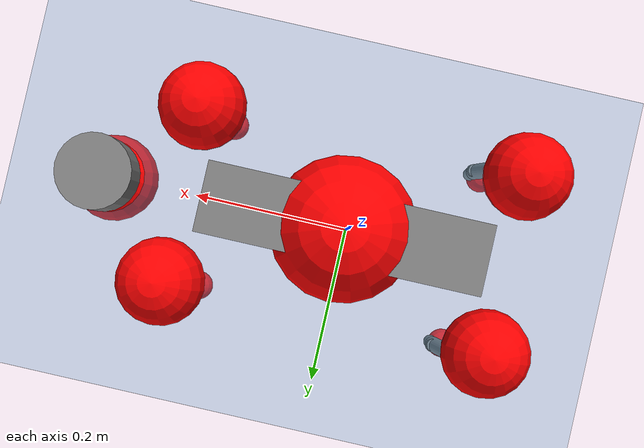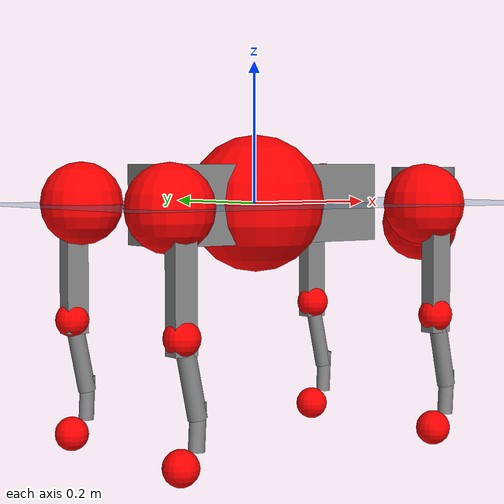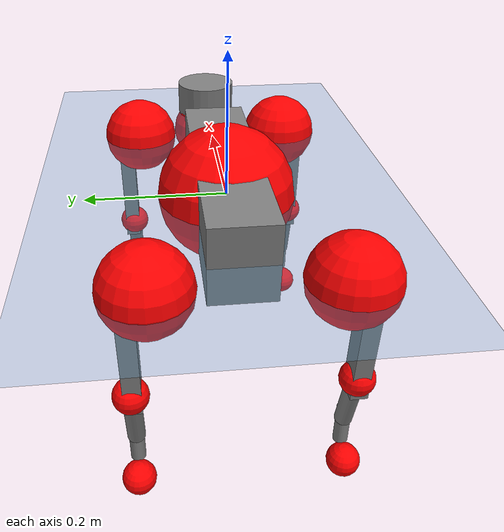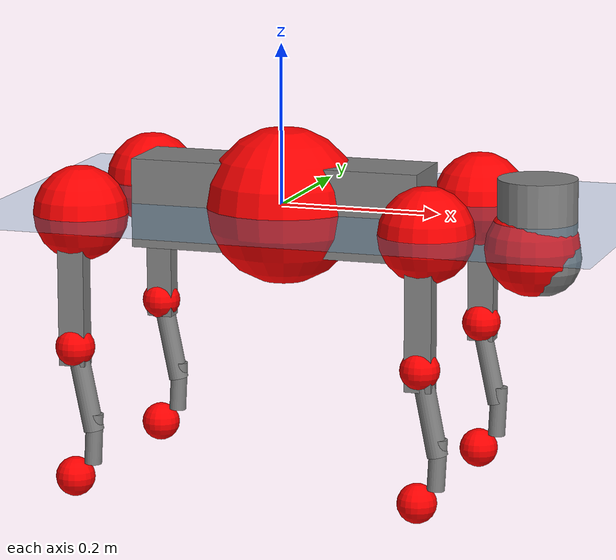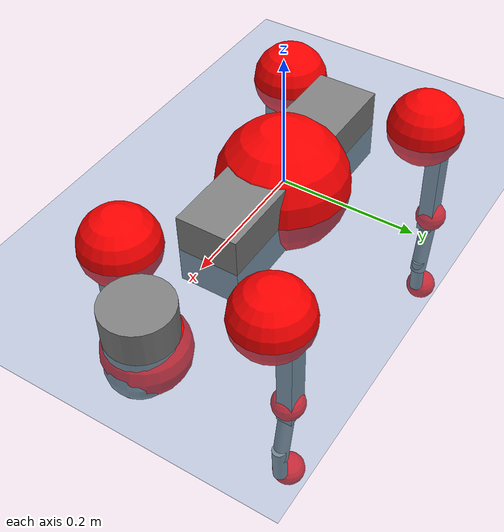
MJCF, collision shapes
<mujoco model="go2">
  <compiler angle="radian" assetdir="assets" balanceinertia="true" inertiafromgeom="false"/>

  <option timestep="0.005" density="1.2" viscosity="2e-05"/>

  <size nkey="1"/>

  <visual>
    <quality shadowsize="8192"/>
    <map shadowclip="0.5"/>
  </visual>

  <default>
    <default class="/">
      <geom contype="0" conaffinity="0" group="1" solref="-1000 -80"/>
      <site size="0.01 0.005 0.005" group="5"/>
      <general forcelimited="true" biastype="affine" gainprm="20" biasprm="0 -20 -0.5"/>
      <default class="go2">
        <joint armature="0.01" damping="0.01" frictionloss="0.2"/>
        <geom condim="1" margin="0.001"/>
        <default class="visual">
          <geom type="mesh" group="2"/>
        </default>
        <default class="collision">
          <geom group="3"/>
          <default class="foot">
            <geom size="0.022 0 0" condim="6" priority="1" friction="0.8 0.02 0.01" solimp="0.015 1 0.022"/>
          </default>
        </default>
        <default class="reward_collision_sphere">
          <geom group="5" rgba="1 0 0 1"/>
        </default>
      </default>
    </default>
  </default>

  <asset>
    <texture type="skybox" colorspace="auto" name="//unnamed_texture_0" builtin="gradient" rgb1="0.95 0.95 0.95" rgb2="0.95 0.95 0.95" width="100" height="600"/>
    <texture type="2d" colorspace="auto" name="texplane" builtin="checker" rgb1="0.345 0.575 0.748" rgb2="0.345 0.575 0.748" markrgb="1 1 1" width="512" height="512"/>
    <material name="MatPlane" class="/" texture="texplane" texuniform="true" texrepeat="2 2" specular="0.9"/>
    <material name="metal" class="/" rgba="0.9 0.95 0.95 1"/>
    <material name="black" class="/" rgba="0 0 0 1"/>
    <material name="white" class="/"/>
    <material name="gray" class="/" rgba="0.671705 0.692426 0.77427 1"/>
    <mesh name="base_0" class="/" file="base_0.obj"/>
    <mesh name="base_1" class="/" file="base_1.obj"/>
    <mesh name="base_2" class="/" file="base_2.obj"/>
    <mesh name="base_3" class="/" file="base_3.obj"/>
    <mesh name="base_4" class="/" file="base_4.obj"/>
    <mesh name="hip_0" class="/" file="hip_0.obj"/>
    <mesh name="hip_1" class="/" file="hip_1.obj"/>
    <mesh name="thigh_0" class="/" file="thigh_0.obj"/>
    <mesh name="thigh_1" class="/" file="thigh_1.obj"/>
    <mesh name="thigh_mirror_0" class="/" file="thigh_mirror_0.obj"/>
    <mesh name="thigh_mirror_1" class="/" file="thigh_mirror_1.obj"/>
    <mesh name="calf_0" class="/" file="calf_0.obj"/>
    <mesh name="calf_1" class="/" file="calf_1.obj"/>
    <mesh name="calf_mirror_0" class="/" file="calf_mirror_0.obj"/>
    <mesh name="calf_mirror_1" class="/" file="calf_mirror_1.obj"/>
    <mesh name="foot" class="/" file="foot.obj"/>
  </asset>

  <worldbody>
    <geom name="floor" class="/" size="100 100 0.125" type="plane" group="0" material="MatPlane"/>
    <light name="toplight_shadow" class="/" pos="0 0 5" dir="0.0990148 0.0990148 -0.990148" type="directional" ambient="0.04 0.04 0.04" diffuse="0.55 0.55 0.55" specular="0.12 0.12 0.12"/>
    <light name="toplight_fill" class="/" pos="0 0 5" dir="0.0990148 0.0990148 -0.990148" type="directional" castshadow="false" ambient="0.04 0.04 0.04" diffuse="0.3 0.3 0.3" specular="0.08 0.08 0.08"/>
    <body name="trunk" childclass="go2" pos="0.0027573 -5.7391e-05 -0.000113016" quat="1 0.000414504 -0.000304484 1.22341e-05">
      <inertial pos="0.0238353 -0.000147343 -0.00426211" quat="-0.00519715 0.715198 -0.00346004 0.698894" mass="6.37953" diaginertia="0.208072 0.116453 0.00649487"/>
      <joint name="//unnamed_joint_0" type="free" armature="0" damping="0" frictionloss="0"/>
      <geom name="//unnamed_geom_1" class="visual" material="black" mesh="base_0"/>
      <geom name="//unnamed_geom_2" class="visual" material="black" mesh="base_1"/>
      <geom name="//unnamed_geom_3" class="visual" material="black" mesh="base_2"/>
      <geom name="//unnamed_geom_4" class="visual" material="white" mesh="base_3"/>
      <geom name="//unnamed_geom_5" class="visual" material="gray" mesh="base_4"/>
      <geom name="trunk_1" class="collision" size="0.183019 0.0454872 0.0554604" type="box"/>
      <geom name="trunk_2" class="collision" size="0.0486494 0.0437845" pos="0.321218 0 0.00767096" type="cylinder"/>
      <geom name="trunk_3" class="collision" size="0.0457305" pos="0.330235 0 -0.0460257"/>
      <geom name="//unnamed_geom_9" class="reward_collision_sphere" size="0.0972989"/>
      <geom name="//unnamed_geom_10" class="reward_collision_sphere" size="0.0583793" pos="0.315582 0 -0.0345193"/>
      <site name="imu" pos="-0.03332 0.00375135 0.0190726" size="0.00972989"/>
      <camera name="track" pos="0 -2.04958 0" quat="0.707107 0.707107 0 0" mode="trackcom"/>
      <camera name="ego_camera" pos="0.351649 0 0.0345193" quat="-0.5 -0.5 0.5 0.5"/>
      <body name="FL_hip" pos="0.217806 0.0478116 -0.000923704" quat="0.999999 -0.00106762 -0.000334581 0.000404397">
        <inertial pos="-0.00879782 0.00214366 -0.000644599" quat="0.496238 0.498624 0.505984 0.499102" mass="0.628607" diaginertia="0.00161837 0.00065017 0.000127553"/>
        <joint name="FL_hip_joint" pos="0 0 0" axis="0.999933 0.00245788 0.0112951" range="-1.0516 1.04917" armature="0.00843041" damping="0.0071268" frictionloss="0.20219"/>
        <geom name="//unnamed_geom_11" class="visual" material="metal" mesh="hip_0"/>
        <geom name="//unnamed_geom_12" class="visual" material="gray" mesh="hip_1"/>
        <geom name="//unnamed_geom_13" class="collision" size="0.0447575 0.0194598" pos="0 0.0819832 0" quat="0.707107 0.707107 0 0" type="cylinder"/>
        <geom name="//unnamed_geom_14" class="reward_collision_sphere" size="0.0583793" pos="0 0.0717353 0"/>
        <body name="FL_thigh" pos="-0.00248687 0.0973732 -0.00048552" quat="1 6.59814e-05 -3.04017e-05 -0.000402535">
          <inertial pos="-0.00434654 -0.0228019 -0.0275679" quat="0.831213 0.0844643 -0.0198625 0.549141" mass="1.07289" diaginertia="0.0109563 0.00663096 0.000233126"/>
          <joint name="FL_thigh_joint" pos="0 0 0" axis="0.0155 0.99988 -3.62906e-05" range="-1.56702 3.49421" armature="0.0111294" damping="0" frictionloss="0.180964"/>
          <geom name="//unnamed_geom_15" class="visual" material="metal" mesh="thigh_0"/>
          <geom name="//unnamed_geom_16" class="visual" material="gray" mesh="thigh_1"/>
          <geom name="//unnamed_geom_17" class="collision" size="0.103623 0.0119191 0.0165408" pos="0 0 -0.0816957" quat="0.707107 0 0.707107 0" type="box"/>
          <body name="FL_calf" pos="-0.000532292 -0.00290219 -0.162846" quat="0.999999 0.00044324 -0.000988992 -0.000203864">
            <inertial pos="0.00803304 0.000465947 -0.108435" quat="0.712987 0.0128863 0.00241533 0.701054" mass="0.231311" diaginertia="0.00268039 0.00168073 1.39131e-05"/>
            <joint name="FL_calf_joint" pos="0 0 0" axis="-0.0049693 0.999974 -0.00516764" stiffness="0.00161771" range="-2.73148 -0.821463" armature="0.00980383" damping="0" frictionloss="0.19226"/>
            <geom name="//unnamed_geom_18" class="visual" material="gray" mesh="calf_0"/>
            <geom name="//unnamed_geom_19" class="visual" material="black" mesh="calf_1"/>
            <geom name="FL_calf0" class="collision" size="0.0116759 0.0583793" pos="0.00901664 0 -0.0460257" quat="0.994493 0 -0.104807 0" type="cylinder"/>
            <geom name="//unnamed_geom_21" class="collision" size="0.0107029 0.0316221" pos="0.0225416 0 -0.11353" quat="0.999688 0 0.0249974 0" type="cylinder"/>
            <geom name="//unnamed_geom_22" class="visual" pos="0 0 -0.163391" quat="1 0 0 0" material="black" mesh="foot"/>
            <geom name="FL_foot" class="foot" size="0.0202697" pos="-0.00225416 0 -0.163391"/>
            <geom name="//unnamed_geom_24" class="reward_collision_sphere" size="0.0243247"/>
            <geom name="//unnamed_geom_25" class="reward_collision_sphere" size="0.0243247" pos="-0.00225416 0 -0.163391"/>
            <site name="FL_foot" class="foot" pos="-0.00225416 0 -0.163391" size="0.00972989"/>
          </body>
        </body>
      </body>
      <body name="FR_hip" pos="0.215801 -0.0449117 -0.00202896" quat="1 7.94352e-05 1.81907e-05 0.00021266">
        <inertial pos="-0.00338059 -0.0026938 -0.00254024" quat="0.502347 0.499984 0.496698 0.500954" mass="0.63914" diaginertia="0.00165591 0.000679612 0.00013206"/>
        <joint name="FR_hip_joint" pos="0 0 0" axis="0.999921 0.0103639 -0.00716459" range="-1.10465 1.04176" armature="0.00948426" damping="0.0189772" frictionloss="0.168657"/>
        <geom name="//unnamed_geom_26" class="visual" pos="0 2.24493e-09 9.62895e-08" quat="4.63268e-05 1 0 0" material="metal" mesh="hip_0"/>
        <geom name="//unnamed_geom_27" class="visual" pos="0 3.63929e-09 -2.38161e-07" quat="4.63268e-05 1 0 0" material="gray" mesh="hip_1"/>
        <geom name="//unnamed_geom_28" class="collision" size="0.0447575 0.0194598" pos="0 -0.0819832 0" quat="0.707107 0.707107 0 0" type="cylinder"/>
        <geom name="//unnamed_geom_29" class="reward_collision_sphere" size="0.0583793" pos="0 -0.0717353 0"/>
        <body name="FR_thigh" pos="0.000632148 -0.0968109 0.00214858" quat="1 -5.01108e-07 -6.11146e-07 1.31236e-06">
          <inertial pos="-0.00467265 0.025366 -0.0257891" quat="0.551471 -0.0197155 0.0844916 0.82967" mass="1.05542" diaginertia="0.0108882 0.00648243 0.000232188"/>
          <joint name="FR_thigh_joint" pos="0 0 0" axis="-0.00904163 -0.999958 -0.00164927" range="-3.47975 1.58537" armature="0.0101923" damping="0.0060814" frictionloss="0.184425"/>
          <geom name="//unnamed_geom_30" class="visual" material="metal" mesh="thigh_mirror_0"/>
          <geom name="//unnamed_geom_31" class="visual" material="gray" mesh="thigh_mirror_1"/>
          <geom name="//unnamed_geom_32" class="collision" size="0.103623 0.0119191 0.0165408" pos="0 0 -0.0816957" quat="0.707107 0 0.707107 0" type="box"/>
          <body name="FR_calf" pos="-0.000368948 0.000242312 -0.16042" quat="0.999999 0.00034213 0.00120264 0.000301231">
            <inertial pos="0.00941169 -0.0010588 -0.106072" quat="0.701744 -0.00437743 0.00601739 0.712391" mass="0.217231" diaginertia="0.0027719 0.0017291 1.47361e-05"/>
            <joint name="FR_calf_joint" pos="0 0 0" axis="0.00979438 -0.999949 0.00236835" stiffness="0.00974047" range="0.781857 2.71677" armature="0.00935653" damping="0.0222573" frictionloss="0.221463"/>
            <geom name="//unnamed_geom_33" class="visual" material="gray" mesh="calf_mirror_0"/>
            <geom name="//unnamed_geom_34" class="visual" material="black" mesh="calf_mirror_1"/>
            <geom name="FR_calf0" class="collision" size="0.0126489 0.0583793" pos="0.0112708 0 -0.0460257" quat="0.995004 0 -0.0998334 0" type="cylinder"/>
            <geom name="//unnamed_geom_36" class="collision" size="0.0107029 0.0316221" pos="0.0225416 0 -0.11353" quat="0.999688 0 0.0249974 0" type="cylinder"/>
            <geom name="//unnamed_geom_37" class="visual" pos="0 0 -0.163391" quat="1 0 0 0" material="black" mesh="foot"/>
            <geom name="FR_foot" class="foot" size="0.021648" pos="-0.00225416 0 -0.163391"/>
            <geom name="//unnamed_geom_39" class="reward_collision_sphere" size="0.0243247"/>
            <geom name="//unnamed_geom_40" class="reward_collision_sphere" size="0.0243247" pos="-0.00225416 0 -0.163391"/>
            <site name="FR_foot" class="foot" pos="-0.00225416 0 -0.163391" size="0.00972989"/>
          </body>
        </body>
      </body>
      <body name="RL_hip" pos="-0.216001 0.0451678 0.000924312" quat="1 0.000231654 0.000154112 0.000136159">
        <inertial pos="0.00880469 -0.000331742 -0.000107668" quat="0.504329 0.509119 0.489078 0.497246" mass="0.621102" diaginertia="0.00163262 0.000676835 0.000123619"/>
        <joint name="RL_hip_joint" pos="0 0 0" axis="-0.999996 0.00210805 0.00179879" range="-1.00585 1.0398" armature="0.00975906" damping="0.0141614" frictionloss="0.198776"/>
        <geom name="//unnamed_geom_41" class="visual" pos="-3.13604e-09 0 -6.14736e-07" quat="4.63268e-05 0 1 0" material="metal" mesh="hip_0"/>
        <geom name="//unnamed_geom_42" class="visual" pos="-5.08389e-09 0 -5.45183e-07" quat="4.63268e-05 0 1 0" material="gray" mesh="hip_1"/>
        <geom name="//unnamed_geom_43" class="collision" size="0.0447575 0.0194598" pos="0 0.0819832 0" quat="0.707107 0.707107 0 0" type="cylinder"/>
        <geom name="//unnamed_geom_44" class="reward_collision_sphere" size="0.0583793" pos="0 0.0717353 0"/>
        <body name="RL_thigh" pos="0.00152113 0.0981604 -0.000301426" quat="1 -8.63294e-06 -4.35886e-05 3.38967e-05">
          <inertial pos="-0.00515211 -0.0200796 -0.0246813" quat="0.822789 0.0876619 -0.0174879 0.561273" mass="1.07651" diaginertia="0.010844 0.00681287 0.000232459"/>
          <joint name="RL_thigh_joint" pos="0 0 0" axis="0.00741528 0.999948 -0.00706197" range="-0.482331 4.56999" armature="0.0110934" damping="0.00209739" frictionloss="0.220774"/>
          <geom name="//unnamed_geom_45" class="visual" material="metal" mesh="thigh_0"/>
          <geom name="//unnamed_geom_46" class="visual" material="gray" mesh="thigh_1"/>
          <geom name="//unnamed_geom_47" class="collision" size="0.103623 0.0119191 0.0165408" pos="0 0 -0.0816957" quat="0.707107 0 0.707107 0" type="box"/>
          <body name="RL_calf" pos="-0.00210282 0.00237636 -0.166168" quat="0.999999 -0.000269128 -0.000606959 0.000990513">
            <inertial pos="0.00699055 -0.000644263 -0.106125" quat="0.707195 0.00437462 -0.00290031 0.706999" mass="0.214177" diaginertia="0.0026861 0.00164068 1.41792e-05"/>
            <joint name="RL_calf_joint" pos="0 0 0" axis="0.00439541 0.999916 -0.0122171" range="-2.74329 -0.873749" armature="0.00919035" damping="0.00965581" frictionloss="0.17029"/>
            <geom name="//unnamed_geom_48" class="visual" material="gray" mesh="calf_0"/>
            <geom name="//unnamed_geom_49" class="visual" material="black" mesh="calf_1"/>
            <geom name="RL_calf0" class="collision" size="0.0126489 0.0583793" pos="0.0112708 0 -0.0460257" quat="0.995004 0 -0.0998334 0" type="cylinder"/>
            <geom name="//unnamed_geom_51" class="collision" size="0.0107029 0.0316221" pos="0.0225416 0 -0.11353" quat="0.999688 0 0.0249974 0" type="cylinder"/>
            <geom name="//unnamed_geom_52" class="visual" pos="0 0 -0.163391" quat="1 0 0 0" material="black" mesh="foot"/>
            <geom name="RL_foot" class="foot" size="0.0170228" pos="-0.00225416 0 -0.163391"/>
            <geom name="//unnamed_geom_54" class="reward_collision_sphere" size="0.0243247"/>
            <geom name="//unnamed_geom_55" class="reward_collision_sphere" size="0.0243247" pos="-0.00225416 0 -0.163391"/>
            <site name="RL_foot" class="foot" pos="-0.00225416 0 -0.163391" size="0.00972989"/>
          </body>
        </body>
      </body>
      <body name="RR_hip" pos="-0.220202 -0.0492489 -0.000331519" quat="1 -8.4781e-05 -0.000136687 3.51947e-05">
        <inertial pos="0.00822315 -0.000939862 0.000278859" quat="0.506266 0.489161 0.504547 0.499848" mass="0.632061" diaginertia="0.0016573 0.000698618 0.000131921"/>
        <joint name="RR_hip_joint" pos="0 0 0" axis="-0.999911 -0.0129841 0.00311557" range="-1.04441 1.0344" armature="0.00984729" damping="0.00766166" frictionloss="0.198526"/>
        <geom name="//unnamed_geom_56" class="visual" pos="3.1325e-09 2.24493e-09 -7.11025e-07" quat="2.14617e-09 4.63268e-05 4.63268e-05 -1" material="metal" mesh="hip_0"/>
        <geom name="//unnamed_geom_57" class="visual" pos="5.09265e-09 3.63929e-09 -3.07022e-07" quat="2.14617e-09 4.63268e-05 4.63268e-05 -1" material="gray" mesh="hip_1"/>
        <geom name="//unnamed_geom_58" class="collision" size="0.0447575 0.0194598" pos="0 -0.0819832 0" quat="0.707107 0.707107 0 0" type="cylinder"/>
        <geom name="//unnamed_geom_59" class="reward_collision_sphere" size="0.0583793" pos="0 -0.0717353 0"/>
        <body name="RR_thigh" pos="9.54178e-05 -0.0977486 0.00139" quat="1 -6.46509e-05 -0.000134963 -0.000143309">
          <inertial pos="-0.00511241 0.0228151 -0.0258542" quat="0.558066 -0.0134683 0.077093 0.826098" mass="1.07718" diaginertia="0.0107776 0.00683718 0.000241159"/>
          <joint name="RR_thigh_joint" pos="0 0 0" axis="0.00556043 -0.999976 -0.00409583" range="-4.54303 0.518037" armature="0.0109012" damping="0.00277623" frictionloss="0.186291"/>
          <geom name="//unnamed_geom_60" class="visual" material="metal" mesh="thigh_mirror_0"/>
          <geom name="//unnamed_geom_61" class="visual" material="gray" mesh="thigh_mirror_1"/>
          <geom name="//unnamed_geom_62" class="collision" size="0.103623 0.0119191 0.0165408" pos="0 0 -0.0816957" quat="0.707107 0 0.707107 0" type="box"/>
          <body name="RR_calf" pos="0.000522857 -9.81472e-05 -0.163328" quat="1 3.86184e-05 -0.000342782 0.000246923">
            <inertial pos="0.00422845 -0.00193411 -0.105935" quat="0.703449 -0.00332325 0.000738599 0.710738" mass="0.230563" diaginertia="0.00265133 0.00171629 1.41342e-05"/>
            <joint name="RR_calf_joint" pos="0 0 0" axis="-0.000529254 -0.999993 0.0035805" stiffness="0.00221474" range="0.84412 2.77931" armature="0.00984526" damping="0.00927598" frictionloss="0.220896"/>
            <geom name="//unnamed_geom_63" class="visual" material="gray" mesh="calf_mirror_0"/>
            <geom name="//unnamed_geom_64" class="visual" material="black" mesh="calf_mirror_1"/>
            <geom name="RR_calf0" class="collision" size="0.0126489 0.0583793" pos="0.0112708 0 -0.0460257" quat="0.995004 0 -0.0998334 0" type="cylinder"/>
            <geom name="//unnamed_geom_66" class="collision" size="0.0107029 0.0316221" pos="0.0225416 0 -0.11353" quat="0.999688 0 0.0249974 0" type="cylinder"/>
            <geom name="//unnamed_geom_67" class="visual" pos="0 0 -0.163391" quat="1 0 0 0" material="black" mesh="foot"/>
            <geom name="RR_foot" class="foot" size="0.0231476" pos="-0.00225416 0 -0.163391"/>
            <geom name="//unnamed_geom_69" class="reward_collision_sphere" size="0.0243247"/>
            <geom name="//unnamed_geom_70" class="reward_collision_sphere" size="0.0243247" pos="-0.00225416 0 -0.163391"/>
            <site name="RR_foot" class="foot" pos="-0.00225416 0 -0.163391" size="0.00972989"/>
          </body>
        </body>
      </body>
    </body>
  </worldbody>

  <contact>
    <pair class="/" geom1="floor" geom2="FL_foot" name="//unnamed_contact_0"/>
    <pair class="/" geom1="floor" geom2="FR_foot" name="//unnamed_contact_1"/>
    <pair class="/" geom1="floor" geom2="RL_foot" name="//unnamed_contact_2"/>
    <pair class="/" geom1="floor" geom2="RR_foot" name="//unnamed_contact_3"/>
  </contact>

  <actuator>
    <general name="FL_hip" class="/" joint="FL_hip_joint" forcerange="-23.082 23.082" gainprm="19.4292" biasprm="0 -19.4292 -0.476532"/>
    <general name="FL_thigh" class="/" joint="FL_thigh_joint" forcerange="-20.7767 20.7767" gainprm="19.4292" biasprm="0 -19.4292 -0.476532"/>
    <general name="FL_calf" class="/" joint="FL_calf_joint" forcerange="-45.3938 45.3938" gainprm="19.4292" biasprm="0 -19.4292 -0.476532"/>
    <general name="FR_hip" class="/" joint="FR_hip_joint" forcerange="-22.9744 22.9744" gainprm="19.4292" biasprm="0 -19.4292 -0.476532"/>
    <general name="FR_thigh" class="/" joint="FR_thigh_joint" forcerange="-22.6469 22.6469" gainprm="19.4292" biasprm="0 -19.4292 -0.476532"/>
    <general name="FR_calf" class="/" joint="FR_calf_joint" forcerange="-47.1948 47.1948" gainprm="19.4292" biasprm="0 -19.4292 -0.476532"/>
    <general name="RL_hip" class="/" joint="RL_hip_joint" forcerange="-22.8879 22.8879" gainprm="19.4292" biasprm="0 -19.4292 -0.476532"/>
    <general name="RL_thigh" class="/" joint="RL_thigh_joint" forcerange="-24.6673 24.6673" gainprm="19.4292" biasprm="0 -19.4292 -0.476532"/>
    <general name="RL_calf" class="/" joint="RL_calf_joint" forcerange="-42.8134 42.8134" gainprm="19.4292" biasprm="0 -19.4292 -0.476532"/>
    <general name="RR_hip" class="/" joint="RR_hip_joint" forcerange="-22.7934 22.7934" gainprm="19.4292" biasprm="0 -19.4292 -0.476532"/>
    <general name="RR_thigh" class="/" joint="RR_thigh_joint" forcerange="-22.3803 22.3803" gainprm="19.4292" biasprm="0 -19.4292 -0.476532"/>
    <general name="RR_calf" class="/" joint="RR_calf_joint" forcerange="-40.2047 40.2047" gainprm="19.4292" biasprm="0 -19.4292 -0.476532"/>
  </actuator>

  <sensor>
    <gyro site="imu" name="imu_angular_velocity"/>
    <velocimeter site="imu" name="imu_linear_velocity"/>
    <framelinvel objtype="site" objname="FL_foot" name="FL_foot_global_linear_velocity"/>
    <framelinvel objtype="site" objname="FR_foot" name="FR_foot_global_linear_velocity"/>
    <framelinvel objtype="site" objname="RL_foot" name="RL_foot_global_linear_velocity"/>
    <framelinvel objtype="site" objname="RR_foot" name="RR_foot_global_linear_velocity"/>
  </sensor>

  <keyframe>
    <key name="home" qpos="0 0 0.325 1 0 0 0 0.1 0.8 -1.5 -0.1 -0.8 1.5 -0.1 0.8 -1.5 0.1 -0.8 1.5"/>
  </keyframe>
</mujoco>
